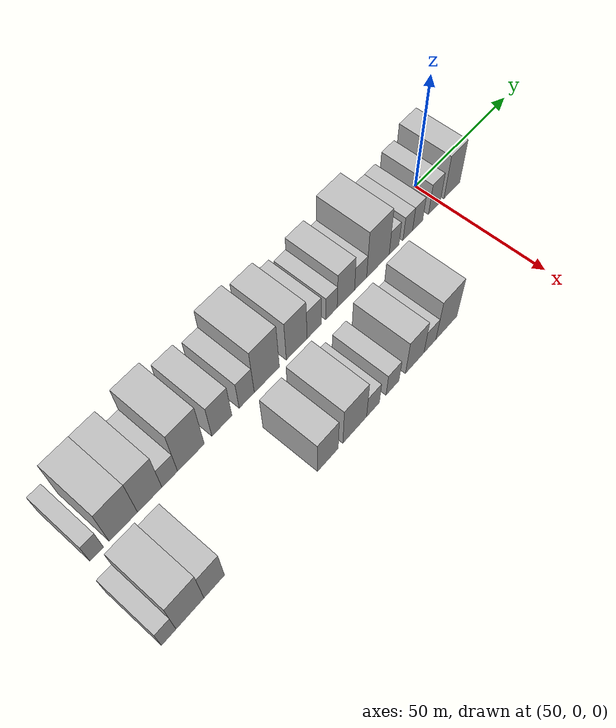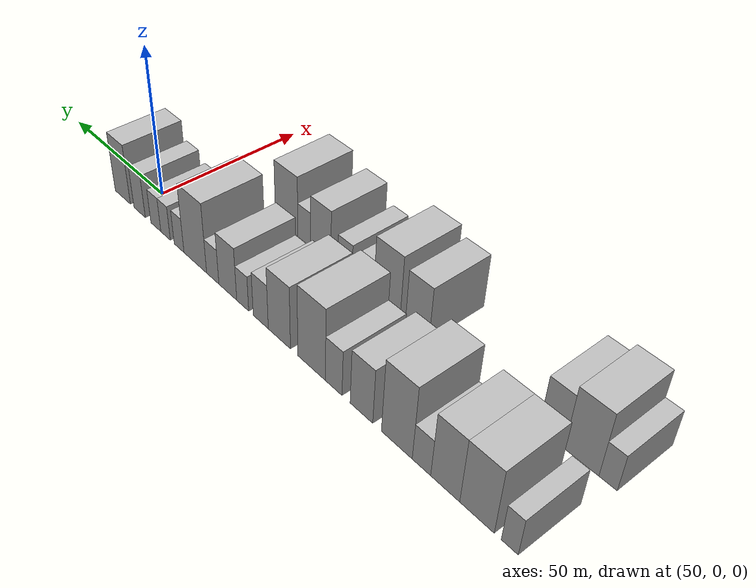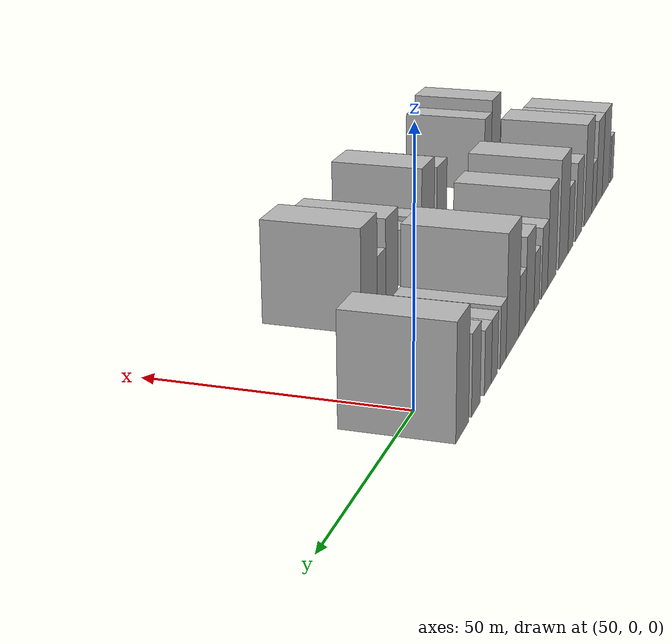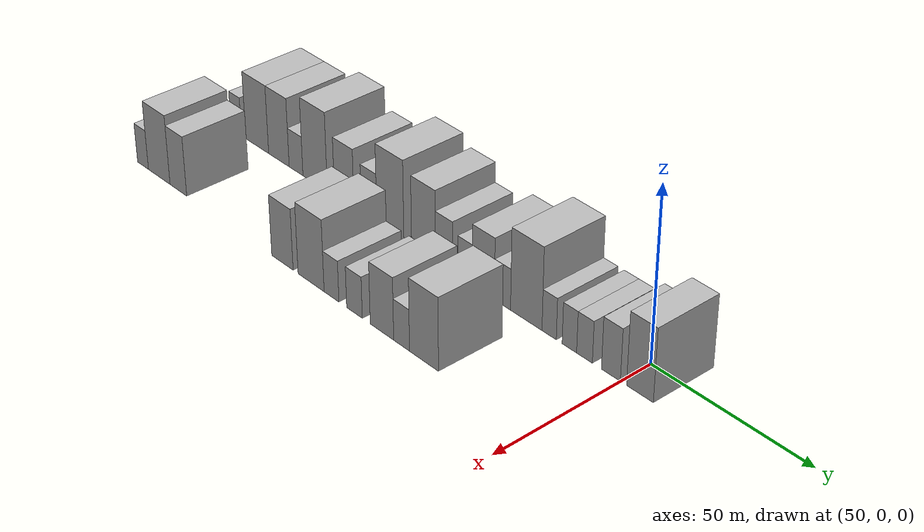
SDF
<sdf version="1.6">
 <world name="default">
  <model name="building_14">
   <static>1</static>
   <pose>50.0000 -148.7292 0 0.000000 0.000000 0.000000</pose>
   <link name="link">
    <pose>0 0 6.00 0 0 0</pose>
    <collision name="collision"><geometry><box><size>20.0000 4.8036 12.0000</size></box></geometry></collision>
    <visual name="visual">
     <cast_shadows>0</cast_shadows>
     <geometry><box><size>20.0000 4.8036 12.0000</size></box></geometry>
     <material>
      <script>
       <uri>model://HANNAS_wall/materials/scripts</uri>
       <uri>model://HANNAS_wall/materials/textures</uri>
       <name>vrc/HANNAS_wall</name>
      </script>
     </material>
    </visual>
   </link>
  </model>
  <model name="building_15">
   <static>1</static>
   <pose>50.0000 -139.2050 0 0.000000 0.000000 0.000000</pose>
   <link name="link">
    <pose>0 0 10.50 0 0 0</pose>
    <collision name="collision"><geometry><box><size>20.0000 10.2449 21.0000</size></box></geometry></collision>
    <visual name="visual">
     <cast_shadows>0</cast_shadows>
     <geometry><box><size>20.0000 10.2449 21.0000</size></box></geometry>
     <material>
      <script>
       <uri>model://HANNAS_wall/materials/scripts</uri>
       <uri>model://HANNAS_wall/materials/textures</uri>
       <name>vrc/HANNAS_wall</name>
      </script>
     </material>
    </visual>
   </link>
  </model>
  <model name="building_16">
   <static>1</static>
   <pose>50.0000 -129.5559 0 0.000000 0.000000 0.000000</pose>
   <link name="link">
    <pose>0 0 10.50 0 0 0</pose>
    <collision name="collision"><geometry><box><size>20.0000 9.0533 21.0000</size></box></geometry></collision>
    <visual name="visual">
     <cast_shadows>0</cast_shadows>
     <geometry><box><size>20.0000 9.0533 21.0000</size></box></geometry>
     <material>
      <script>
       <uri>model://HANNAS_wall/materials/scripts</uri>
       <uri>model://HANNAS_wall/materials/textures</uri>
       <name>vrc/HANNAS_wall</name>
      </script>
     </material>
    </visual>
   </link>
  </model>
  <model name="building_17">
   <static>1</static>
   <pose>50.0000 -122.0449 0 0.000000 0.000000 0.000000</pose>
   <link name="link">
    <pose>0 0 6.00 0 0 0</pose>
    <collision name="collision"><geometry><box><size>20.0000 5.9686 12.0000</size></box></geometry></collision>
    <visual name="visual">
     <cast_shadows>0</cast_shadows>
     <geometry><box><size>20.0000 5.9686 12.0000</size></box></geometry>
     <material>
      <script>
       <uri>model://HANNAS_wall/materials/scripts</uri>
       <uri>model://HANNAS_wall/materials/textures</uri>
       <name>vrc/HANNAS_wall</name>
      </script>
     </material>
    </visual>
   </link>
  </model>
  <model name="building_18">
   <static>1</static>
   <pose>50.0000 -113.8500 0 0.000000 0.000000 0.000000</pose>
   <link name="link">
    <pose>0 0 12.00 0 0 0</pose>
    <collision name="collision"><geometry><box><size>20.0000 10.4212 24.0000</size></box></geometry></collision>
    <visual name="visual">
     <cast_shadows>0</cast_shadows>
     <geometry><box><size>20.0000 10.4212 24.0000</size></box></geometry>
     <material>
      <script>
       <uri>model://HANNAS_wall/materials/scripts</uri>
       <uri>model://HANNAS_wall/materials/textures</uri>
       <name>vrc/HANNAS_wall</name>
      </script>
     </material>
    </visual>
   </link>
  </model>
  <model name="building_19">
   <static>1</static>
   <pose>50.0000 -101.5879 0 0.000000 0.000000 0.000000</pose>
   <link name="link">
    <pose>0 0 9.00 0 0 0</pose>
    <collision name="collision"><geometry><box><size>20.0000 8.1029 18.0000</size></box></geometry></collision>
    <visual name="visual">
     <cast_shadows>0</cast_shadows>
     <geometry><box><size>20.0000 8.1029 18.0000</size></box></geometry>
     <material>
      <script>
       <uri>model://HANNAS_wall/materials/scripts</uri>
       <uri>model://HANNAS_wall/materials/textures</uri>
       <name>vrc/HANNAS_wall</name>
      </script>
     </material>
    </visual>
   </link>
  </model>
  <model name="building_20">
   <static>1</static>
   <pose>50.0000 -91.3871 0 0.000000 0.000000 0.000000</pose>
   <link name="link">
    <pose>0 0 7.50 0 0 0</pose>
    <collision name="collision"><geometry><box><size>20.0000 6.2987 15.0000</size></box></geometry></collision>
    <visual name="visual">
     <cast_shadows>0</cast_shadows>
     <geometry><box><size>20.0000 6.2987 15.0000</size></box></geometry>
     <material>
      <script>
       <uri>model://HANNAS_wall/materials/scripts</uri>
       <uri>model://HANNAS_wall/materials/textures</uri>
       <name>vrc/HANNAS_wall</name>
      </script>
     </material>
    </visual>
   </link>
  </model>
  <model name="building_21">
   <static>1</static>
   <pose>50.0000 -82.8770 0 0.000000 0.000000 0.000000</pose>
   <link name="link">
    <pose>0 0 12.00 0 0 0</pose>
    <collision name="collision"><geometry><box><size>20.0000 10.7214 24.0000</size></box></geometry></collision>
    <visual name="visual">
     <cast_shadows>0</cast_shadows>
     <geometry><box><size>20.0000 10.7214 24.0000</size></box></geometry>
     <material>
      <script>
       <uri>model://HANNAS_wall/materials/scripts</uri>
       <uri>model://HANNAS_wall/materials/textures</uri>
       <name>vrc/HANNAS_wall</name>
      </script>
     </material>
    </visual>
   </link>
  </model>
  <model name="building_22">
   <static>1</static>
   <pose>50.0000 -69.9177 0 0.000000 0.000000 0.000000</pose>
   <link name="link">
    <pose>0 0 10.50 0 0 0</pose>
    <collision name="collision"><geometry><box><size>20.0000 9.1972 21.0000</size></box></geometry></collision>
    <visual name="visual">
     <cast_shadows>0</cast_shadows>
     <geometry><box><size>20.0000 9.1972 21.0000</size></box></geometry>
     <material>
      <script>
       <uri>model://HANNAS_wall/materials/scripts</uri>
       <uri>model://HANNAS_wall/materials/textures</uri>
       <name>vrc/HANNAS_wall</name>
      </script>
     </material>
    </visual>
   </link>
  </model>
  <model name="building_23">
   <static>1</static>
   <pose>50.0000 -62.0917 0 0.000000 0.000000 0.000000</pose>
   <link name="link">
    <pose>0 0 7.50 0 0 0</pose>
    <collision name="collision"><geometry><box><size>20.0000 6.4550 15.0000</size></box></geometry></collision>
    <visual name="visual">
     <cast_shadows>0</cast_shadows>
     <geometry><box><size>20.0000 6.4550 15.0000</size></box></geometry>
     <material>
      <script>
       <uri>model://HANNAS_wall/materials/scripts</uri>
       <uri>model://HANNAS_wall/materials/textures</uri>
       <name>vrc/HANNAS_wall</name>
      </script>
     </material>
    </visual>
   </link>
  </model>
  <model name="building_24">
   <static>1</static>
   <pose>50.0000 -54.2108 0 0.000000 0.000000 0.000000</pose>
   <link name="link">
    <pose>0 0 6.00 0 0 0</pose>
    <collision name="collision"><geometry><box><size>20.0000 5.3067 12.0000</size></box></geometry></collision>
    <visual name="visual">
     <cast_shadows>0</cast_shadows>
     <geometry><box><size>20.0000 5.3067 12.0000</size></box></geometry>
     <material>
      <script>
       <uri>model://HANNAS_wall/materials/scripts</uri>
       <uri>model://HANNAS_wall/materials/textures</uri>
       <name>vrc/HANNAS_wall</name>
      </script>
     </material>
    </visual>
   </link>
  </model>
  <model name="building_25">
   <static>1</static>
   <pose>50.0000 -47.4752 0 0.000000 0.000000 0.000000</pose>
   <link name="link">
    <pose>0 0 9.00 0 0 0</pose>
    <collision name="collision"><geometry><box><size>20.0000 8.1644 18.0000</size></box></geometry></collision>
    <visual name="visual">
     <cast_shadows>0</cast_shadows>
     <geometry><box><size>20.0000 8.1644 18.0000</size></box></geometry>
     <material>
      <script>
       <uri>model://HANNAS_wall/materials/scripts</uri>
       <uri>model://HANNAS_wall/materials/textures</uri>
       <name>vrc/HANNAS_wall</name>
      </script>
     </material>
    </visual>
   </link>
  </model>
  <model name="building_26">
   <static>1</static>
   <pose>50.0000 -40.4975 0 0.000000 0.000000 0.000000</pose>
   <link name="link">
    <pose>0 0 6.00 0 0 0</pose>
    <collision name="collision"><geometry><box><size>20.0000 5.7911 12.0000</size></box></geometry></collision>
    <visual name="visual">
     <cast_shadows>0</cast_shadows>
     <geometry><box><size>20.0000 5.7911 12.0000</size></box></geometry>
     <material>
      <script>
       <uri>model://HANNAS_wall/materials/scripts</uri>
       <uri>model://HANNAS_wall/materials/textures</uri>
       <name>vrc/HANNAS_wall</name>
      </script>
     </material>
    </visual>
   </link>
  </model>
  <model name="building_27">
   <static>1</static>
   <pose>50.0000 -32.0658 0 0.000000 0.000000 0.000000</pose>
   <link name="link">
    <pose>0 0 12.00 0 0 0</pose>
    <collision name="collision"><geometry><box><size>20.0000 11.0724 24.0000</size></box></geometry></collision>
    <visual name="visual">
     <cast_shadows>0</cast_shadows>
     <geometry><box><size>20.0000 11.0724 24.0000</size></box></geometry>
     <material>
      <script>
       <uri>model://HANNAS_wall/materials/scripts</uri>
       <uri>model://HANNAS_wall/materials/textures</uri>
       <name>vrc/HANNAS_wall</name>
      </script>
     </material>
    </visual>
   </link>
  </model>
  <model name="building_28">
   <static>1</static>
   <pose>50.0000 -24.0606 0 0.000000 0.000000 0.000000</pose>
   <link name="link">
    <pose>0 0 6.00 0 0 0</pose>
    <collision name="collision"><geometry><box><size>20.0000 4.9379 12.0000</size></box></geometry></collision>
    <visual name="visual">
     <cast_shadows>0</cast_shadows>
     <geometry><box><size>20.0000 4.9379 12.0000</size></box></geometry>
     <material>
      <script>
       <uri>model://HANNAS_wall/materials/scripts</uri>
       <uri>model://HANNAS_wall/materials/textures</uri>
       <name>vrc/HANNAS_wall</name>
      </script>
     </material>
    </visual>
   </link>
  </model>
  <model name="building_29">
   <static>1</static>
   <pose>50.0000 -17.1362 0 0.000000 0.000000 0.000000</pose>
   <link name="link">
    <pose>0 0 6.00 0 0 0</pose>
    <collision name="collision"><geometry><box><size>20.0000 4.9109 12.0000</size></box></geometry></collision>
    <visual name="visual">
     <cast_shadows>0</cast_shadows>
     <geometry><box><size>20.0000 4.9109 12.0000</size></box></geometry>
     <material>
      <script>
       <uri>model://HANNAS_wall/materials/scripts</uri>
       <uri>model://HANNAS_wall/materials/textures</uri>
       <name>vrc/HANNAS_wall</name>
      </script>
     </material>
    </visual>
   </link>
  </model>
  <model name="building_30">
   <static>1</static>
   <pose>50.0000 -12.0396 0 0.000000 0.000000 0.000000</pose>
   <link name="link">
    <pose>0 0 6.00 0 0 0</pose>
    <collision name="collision"><geometry><box><size>20.0000 5.2822 12.0000</size></box></geometry></collision>
    <visual name="visual">
     <cast_shadows>0</cast_shadows>
     <geometry><box><size>20.0000 5.2822 12.0000</size></box></geometry>
     <material>
      <script>
       <uri>model://HANNAS_wall/materials/scripts</uri>
       <uri>model://HANNAS_wall/materials/textures</uri>
       <name>vrc/HANNAS_wall</name>
      </script>
     </material>
    </visual>
   </link>
  </model>
  <model name="building_31">
   <static>1</static>
   <pose>50.0000 -3.2938 0 0.000000 0.000000 0.000000</pose>
   <link name="link">
    <pose>0 0 7.50 0 0 0</pose>
    <collision name="collision"><geometry><box><size>20.0000 6.2094 15.0000</size></box></geometry></collision>
    <visual name="visual">
     <cast_shadows>0</cast_shadows>
     <geometry><box><size>20.0000 6.2094 15.0000</size></box></geometry>
     <material>
      <script>
       <uri>model://HANNAS_wall/materials/scripts</uri>
       <uri>model://HANNAS_wall/materials/textures</uri>
       <name>vrc/HANNAS_wall</name>
      </script>
     </material>
    </visual>
   </link>
  </model>
  <model name="building_32">
   <static>1</static>
   <pose>50.0000 6.1008 0 0.000000 0.000000 0.000000</pose>
   <link name="link">
    <pose>0 0 10.50 0 0 0</pose>
    <collision name="collision"><geometry><box><size>20.0000 8.5798 21.0000</size></box></geometry></collision>
    <visual name="visual">
     <cast_shadows>0</cast_shadows>
     <geometry><box><size>20.0000 8.5798 21.0000</size></box></geometry>
     <material>
      <script>
       <uri>model://HANNAS_wall/materials/scripts</uri>
       <uri>model://HANNAS_wall/materials/textures</uri>
       <name>vrc/HANNAS_wall</name>
      </script>
     </material>
    </visual>
   </link>
  </model>
  <model name="building_78">
   <static>1</static>
   <pose>79.0000 -151.3480 0 0.000000 0.000000 0.000000</pose>
   <link name="link">
    <pose>0 0 6.00 0 0 0</pose>
    <collision name="collision"><geometry><box><size>20.0000 5.0995 12.0000</size></box></geometry></collision>
    <visual name="visual">
     <cast_shadows>0</cast_shadows>
     <geometry><box><size>20.0000 5.0995 12.0000</size></box></geometry>
     <material>
      <script>
       <uri>model://HANNAS_wall/materials/scripts</uri>
       <uri>model://HANNAS_wall/materials/textures</uri>
       <name>vrc/HANNAS_wall</name>
      </script>
     </material>
    </visual>
   </link>
  </model>
  <model name="building_79">
   <static>1</static>
   <pose>79.0000 -143.7996 0 0.000000 0.000000 0.000000</pose>
   <link name="link">
    <pose>0 0 10.50 0 0 0</pose>
    <collision name="collision"><geometry><box><size>20.0000 9.9974 21.0000</size></box></geometry></collision>
    <visual name="visual">
     <cast_shadows>0</cast_shadows>
     <geometry><box><size>20.0000 9.9974 21.0000</size></box></geometry>
     <material>
      <script>
       <uri>model://HANNAS_wall/materials/scripts</uri>
       <uri>model://HANNAS_wall/materials/textures</uri>
       <name>vrc/HANNAS_wall</name>
      </script>
     </material>
    </visual>
   </link>
  </model>
  <model name="building_80">
   <static>1</static>
   <pose>79.0000 -135.0164 0 0.000000 0.000000 0.000000</pose>
   <link name="link">
    <pose>0 0 9.00 0 0 0</pose>
    <collision name="collision"><geometry><box><size>20.0000 7.5692 18.0000</size></box></geometry></collision>
    <visual name="visual">
     <cast_shadows>0</cast_shadows>
     <geometry><box><size>20.0000 7.5692 18.0000</size></box></geometry>
     <material>
      <script>
       <uri>model://HANNAS_wall/materials/scripts</uri>
       <uri>model://HANNAS_wall/materials/textures</uri>
       <name>vrc/HANNAS_wall</name>
      </script>
     </material>
    </visual>
   </link>
  </model>
  <model name="building_81">
   <static>1</static>
   <pose>79.0000 -90.1417 0 0.000000 0.000000 0.000000</pose>
   <link name="link">
    <pose>0 0 9.00 0 0 0</pose>
    <collision name="collision"><geometry><box><size>20.0000 8.7267 18.0000</size></box></geometry></collision>
    <visual name="visual">
     <cast_shadows>0</cast_shadows>
     <geometry><box><size>20.0000 8.7267 18.0000</size></box></geometry>
     <material>
      <script>
       <uri>model://HANNAS_wall/materials/scripts</uri>
       <uri>model://HANNAS_wall/materials/textures</uri>
       <name>vrc/HANNAS_wall</name>
      </script>
     </material>
    </visual>
   </link>
  </model>
  <model name="building_82">
   <static>1</static>
   <pose>79.0000 -78.5949 0 0.000000 0.000000 0.000000</pose>
   <link name="link">
    <pose>0 0 10.50 0 0 0</pose>
    <collision name="collision"><geometry><box><size>20.0000 10.3667 21.0000</size></box></geometry></collision>
    <visual name="visual">
     <cast_shadows>0</cast_shadows>
     <geometry><box><size>20.0000 10.3667 21.0000</size></box></geometry>
     <material>
      <script>
       <uri>model://HANNAS_wall/materials/scripts</uri>
       <uri>model://HANNAS_wall/materials/textures</uri>
       <name>vrc/HANNAS_wall</name>
      </script>
     </material>
    </visual>
   </link>
  </model>
  <model name="building_83">
   <static>1</static>
   <pose>79.0000 -70.5244 0 0.000000 0.000000 0.000000</pose>
   <link name="link">
    <pose>0 0 6.00 0 0 0</pose>
    <collision name="collision"><geometry><box><size>20.0000 5.7744 12.0000</size></box></geometry></collision>
    <visual name="visual">
     <cast_shadows>0</cast_shadows>
     <geometry><box><size>20.0000 5.7744 12.0000</size></box></geometry>
     <material>
      <script>
       <uri>model://HANNAS_wall/materials/scripts</uri>
       <uri>model://HANNAS_wall/materials/textures</uri>
       <name>vrc/HANNAS_wall</name>
      </script>
     </material>
    </visual>
   </link>
  </model>
  <model name="building_84">
   <static>1</static>
   <pose>79.0000 -61.6505 0 0.000000 0.000000 0.000000</pose>
   <link name="link">
    <pose>0 0 6.00 0 0 0</pose>
    <collision name="collision"><geometry><box><size>20.0000 5.9735 12.0000</size></box></geometry></collision>
    <visual name="visual">
     <cast_shadows>0</cast_shadows>
     <geometry><box><size>20.0000 5.9735 12.0000</size></box></geometry>
     <material>
      <script>
       <uri>model://HANNAS_wall/materials/scripts</uri>
       <uri>model://HANNAS_wall/materials/textures</uri>
       <name>vrc/HANNAS_wall</name>
      </script>
     </material>
    </visual>
   </link>
  </model>
  <model name="building_85">
   <static>1</static>
   <pose>79.0000 -51.2959 0 0.000000 0.000000 0.000000</pose>
   <link name="link">
    <pose>0 0 9.00 0 0 0</pose>
    <collision name="collision"><geometry><box><size>20.0000 8.7357 18.0000</size></box></geometry></collision>
    <visual name="visual">
     <cast_shadows>0</cast_shadows>
     <geometry><box><size>20.0000 8.7357 18.0000</size></box></geometry>
     <material>
      <script>
       <uri>model://HANNAS_wall/materials/scripts</uri>
       <uri>model://HANNAS_wall/materials/textures</uri>
       <name>vrc/HANNAS_wall</name>
      </script>
     </material>
    </visual>
   </link>
  </model>
  <model name="building_86">
   <static>1</static>
   <pose>79.0000 -44.0371 0 0.000000 0.000000 0.000000</pose>
   <link name="link">
    <pose>0 0 6.00 0 0 0</pose>
    <collision name="collision"><geometry><box><size>20.0000 5.7817 12.0000</size></box></geometry></collision>
    <visual name="visual">
     <cast_shadows>0</cast_shadows>
     <geometry><box><size>20.0000 5.7817 12.0000</size></box></geometry>
     <material>
      <script>
       <uri>model://HANNAS_wall/materials/scripts</uri>
       <uri>model://HANNAS_wall/materials/textures</uri>
       <name>vrc/HANNAS_wall</name>
      </script>
     </material>
    </visual>
   </link>
  </model>
  <model name="building_87">
   <static>1</static>
   <pose>79.0000 -35.9520 0 0.000000 0.000000 0.000000</pose>
   <link name="link">
    <pose>0 0 10.50 0 0 0</pose>
    <collision name="collision"><geometry><box><size>20.0000 10.3885 21.0000</size></box></geometry></collision>
    <visual name="visual">
     <cast_shadows>0</cast_shadows>
     <geometry><box><size>20.0000 10.3885 21.0000</size></box></geometry>
     <material>
      <script>
       <uri>model://HANNAS_wall/materials/scripts</uri>
       <uri>model://HANNAS_wall/materials/textures</uri>
       <name>vrc/HANNAS_wall</name>
      </script>
     </material>
    </visual>
   </link>
  </model>
 </world>
</sdf>
